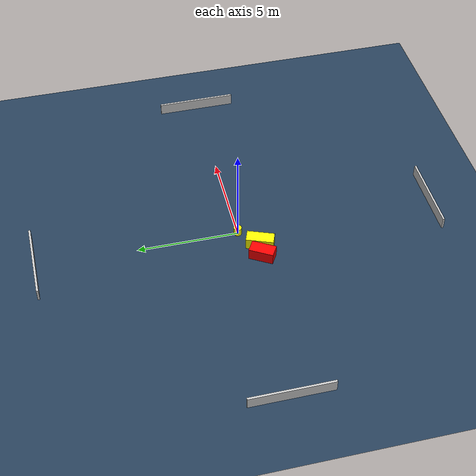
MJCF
<?xml version="1.0" ?>
<mujoco model="generated_environment">
  <option timestep="0.01" integrator="RK4" cone="elliptic"/>
  <default>
    <geom density="1"/>
  </default>
  <asset>
    <texture builtin="gradient" height="3072" name="skybox" rgb1="0.3 0.5 0.7" rgb2="0 0 0" type="skybox" width="512"/>
    <texture builtin="checker" height="300" name="groundplane" rgb1="0.2 0.3 0.4" rgb2="0.1 0.2 0.3" type="2d" width="300"/>
    <material name="groundplane" reflectance="0.2" texrepeat="5 5" texture="groundplane"/>
  </asset>
  <worldbody>
    <light dir="0 0 -1" directional="true" pos="0 0 1.5"/>
    <geom condim="3" friction="0.5 0.005 0.001" material="groundplane" name="floor" pos="0 0 0" size="0 0 0.05" type="plane"/>
    <body name="walls">
      <geom name="wall_1" condim="4" pos="-10.0 0.0 0.3" rgba="0.800000011920929 0.800000011920929 0.800000011920929 1.0" size="0.05 2.0 0.3" type="box"/>
      <geom name="wall_2" condim="4" pos="10.0 0.0 0.3" rgba="0.800000011920929 0.800000011920929 0.800000011920929 1.0" size="0.05 2.0 0.3" type="box"/>
      <geom name="wall_3" condim="4" pos="0.0 -10.0 0.3" rgba="0.800000011920929 0.800000011920929 0.800000011920929 1.0" size="2.0 0.05 0.3" type="box"/>
      <geom name="wall_4" condim="4" pos="0.0 10.0 0.3" rgba="0.800000011920929 0.800000011920929 0.800000011920929 1.0" size="2.0 0.05 0.3" type="box"/>
    </body>
    <body name="robot">
      <joint name="joint_x" type="slide" pos="0 0 0" axis="1 0 0"/>
      <joint name="joint_y" type="slide" pos="0 0 0" axis="0 1 0"/>
      <geom name="robot" type="cylinder" pos="0.0 0.0 0.2" size="0.2 0.2 0.0" mass="5.0" friction="1.0 0.005 0.0001" condim="4" rgba="1.0 1.0 0.0 1.0"/>
    </body>
    <body name="obstacle_1_movable">
      <geom name="obstacle_1_movable" condim="4" pos="-1.0369109011686226 -0.8818080181608869 0.3" euler="0 0 248.75769411796395" friction="0.0 0.005 0.001" rgba="1.0 1.0 0.0 1.0" size="0.6798857842383736 0.307324547804302 0.3" type="box" mass="0.1"/>
      <joint type="free"/>
    </body>
    <body name="obstacle_2_static">
      <geom name="obstacle_2_static" condim="4" pos="-1.7957005300475992 -0.8027469408266438 0.3" euler="0 0 239.0965070639072" friction="0.0 0.005 0.001" rgba="1.0 0.0 0.0 1.0" size="0.6078232481558383 0.3186453701595389 0.3" type="box"/>
    </body>
  </worldbody>
  <actuator>
    <motor name="actuator_x" joint="joint_x" gear="1" ctrlrange="-1 1"/>
    <motor name="actuator_y" joint="joint_y" gear="1" ctrlrange="-1 1"/>
  </actuator>
</mujoco>
